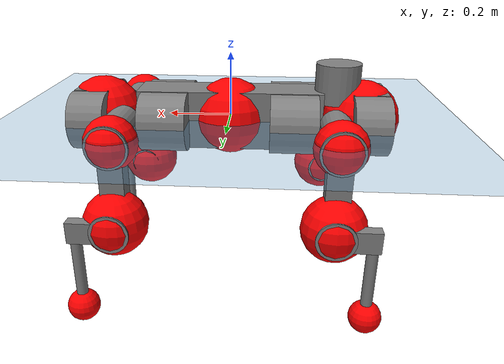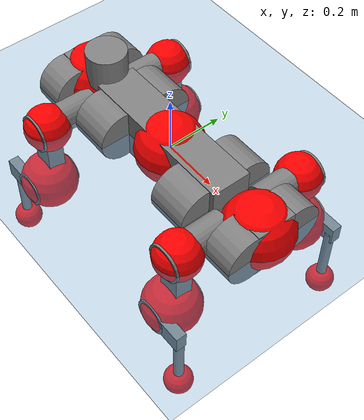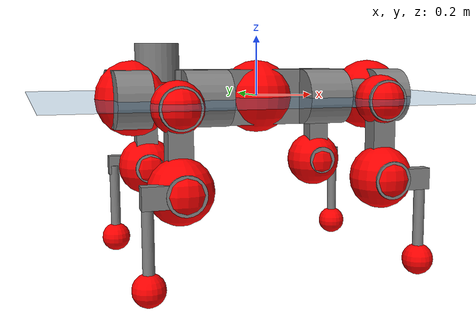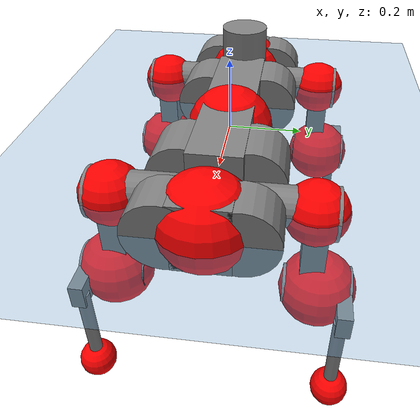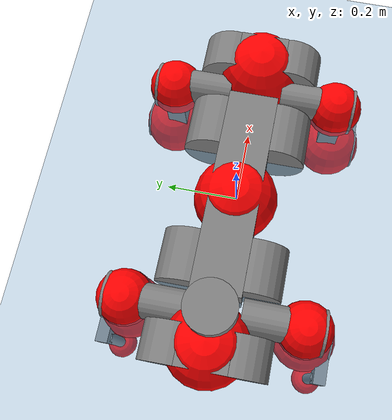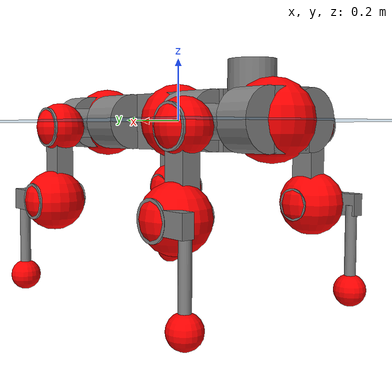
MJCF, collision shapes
<mujoco model="anymal_c">
  <compiler angle="radian" assetdir="assets" balanceinertia="true" inertiafromgeom="false"/>

  <option timestep="0.005" density="1.2" viscosity="2e-05"/>

  <size nkey="1"/>

  <visual>
    <quality shadowsize="8192"/>
    <map shadowclip="0.5"/>
  </visual>

  <default>
    <default class="/">
      <material specular="0" shininess="0.25"/>
      <geom contype="0" conaffinity="0" group="1" solref="-1000 -80"/>
      <site size="0.01 0.005 0.005" group="5"/>
      <general forcelimited="true" forcerange="-80 80" biastype="affine" gainprm="80" biasprm="0 -80 -2"/>
      <default class="anymal_c">
        <joint armature="0.01" damping="0.01" frictionloss="0.1"/>
        <default class="visual">
          <geom type="mesh" group="2"/>
          <default class="visual_zflip"/>
        </default>
        <default class="collision">
          <geom type="cylinder" group="3"/>
          <default class="foot">
            <geom size="0.03 0 0" type="sphere" condim="6" priority="1" friction="0.8 0.02 0.01" solimp="0.015 1 0.03"/>
          </default>
        </default>
      </default>
      <default class="reward_collision_sphere">
        <geom group="5" rgba="1 0 0 1"/>
      </default>
    </default>
  </default>

  <asset>
    <texture type="skybox" colorspace="auto" name="//unnamed_texture_0" builtin="gradient" rgb1="0.95 0.95 0.95" rgb2="0.95 0.95 0.95" width="100" height="600"/>
    <texture type="2d" colorspace="auto" name="texplane" builtin="checker" rgb1="0.345 0.575 0.748" rgb2="0.345 0.575 0.748" markrgb="1 1 1" width="512" height="512"/>
    <texture type="2d" colorspace="linear" name="base" file="base.png"/>
    <texture type="2d" colorspace="linear" name="top_shell" file="top_shell.png"/>
    <texture type="2d" colorspace="linear" name="bottom_shell" file="bottom_shell.png"/>
    <texture type="2d" colorspace="linear" name="remote" file="remote.png"/>
    <texture type="2d" colorspace="linear" name="hatch" file="hatch.png"/>
    <texture type="2d" colorspace="linear" name="handle" file="handle.png"/>
    <texture type="2d" colorspace="linear" name="face" file="face.png"/>
    <texture type="2d" colorspace="linear" name="battery" file="battery.png"/>
    <texture type="2d" colorspace="linear" name="lidar_cage" file="lidar_cage.png"/>
    <texture type="2d" colorspace="linear" name="depth_camera" file="depth_camera.png"/>
    <texture type="2d" colorspace="linear" name="wide_angle_camera" file="wide_angle_camera.png"/>
    <texture type="2d" colorspace="linear" name="lidar" file="lidar.png"/>
    <texture type="2d" colorspace="linear" name="drive" file="drive.png"/>
    <texture type="2d" colorspace="linear" name="hip_l" file="hip_l.png"/>
    <texture type="2d" colorspace="linear" name="shank_l" file="shank_l.png"/>
    <texture type="2d" colorspace="linear" name="foot" file="foot.png"/>
    <texture type="2d" colorspace="linear" name="thigh" file="thigh.png"/>
    <texture type="2d" colorspace="linear" name="shank_r" file="shank_r.png"/>
    <texture type="2d" colorspace="linear" name="hip_r" file="hip_r.png"/>
    <material name="MatPlane" class="/" texture="texplane" texuniform="true" texrepeat="2 2" specular="0.9" shininess="0.5"/>
    <material name="black_plastic" class="/" rgba="0.007 0.007 0.007 1"/>
    <material name="green" class="/" rgba="0.052 0.178 0.033 1"/>
    <material name="red" class="/" rgba="0.178 0.006 0.005 1"/>
    <material name="yellow" class="/" rgba="0.178 0.119 0.006 1"/>
    <material name="lwl" class="/" rgba="0.8 0.8 0.8 1"/>
    <material name="base" class="/" texture="base"/>
    <material name="top_shell" class="/" texture="top_shell"/>
    <material name="bottom_shell" class="/" texture="bottom_shell"/>
    <material name="hip_l" class="/" texture="hip_l"/>
    <material name="thigh" class="/" texture="thigh"/>
    <material name="shank_l" class="/" texture="shank_l"/>
    <material name="foot" class="/" texture="foot"/>
    <material name="hip_r" class="/" texture="hip_r"/>
    <material name="shank" class="/" texture="shank_r"/>
    <material name="hatch" class="/" texture="hatch"/>
    <material name="remote" class="/" texture="remote"/>
    <material name="handle" class="/" texture="handle"/>
    <material name="face" class="/" texture="face"/>
    <material name="depth_camera" class="/" texture="depth_camera"/>
    <material name="wide_angle_camera" class="/" texture="wide_angle_camera"/>
    <material name="battery" class="/" texture="battery"/>
    <material name="lidar_cage" class="/" texture="lidar_cage"/>
    <material name="lidar" class="/" texture="lidar"/>
    <material name="drive" class="/" texture="drive"/>
    <mesh name="base_0" class="/" file="base_0.obj"/>
    <mesh name="base_1" class="/" file="base_1.obj"/>
    <mesh name="base_2" class="/" file="base_2.obj"/>
    <mesh name="base_3" class="/" file="base_3.obj"/>
    <mesh name="base_4" class="/" file="base_4.obj"/>
    <mesh name="base_5" class="/" file="base_5.obj"/>
    <mesh name="top_shell" class="/" file="top_shell.obj"/>
    <mesh name="bottom_shell" class="/" file="bottom_shell.obj"/>
    <mesh name="remote" class="/" file="remote.obj"/>
    <mesh name="handle" class="/" file="handle.obj"/>
    <mesh name="face" class="/" file="face.obj"/>
    <mesh name="wide_angle_camera" class="/" file="wide_angle_camera.obj"/>
    <mesh name="depth_camera" class="/" file="depth_camera.obj"/>
    <mesh name="battery" class="/" file="battery.obj"/>
    <mesh name="lidar_cage" class="/" file="lidar_cage.obj"/>
    <mesh name="lidar" class="/" file="lidar.obj"/>
    <mesh name="drive" class="/" file="drive.obj"/>
    <mesh name="hip_l" class="/" file="hip_l.obj"/>
    <mesh name="thigh" class="/" file="thigh.obj"/>
    <mesh name="shank_l" class="/" file="shank_l.obj"/>
    <mesh name="foot" class="/" file="foot.obj"/>
    <mesh name="hip_r" class="/" file="hip_r.obj"/>
    <mesh name="hatch" class="/" file="hatch.obj"/>
    <mesh name="shank_r" class="/" file="shank_r.obj"/>
  </asset>

  <worldbody>
    <geom name="floor" class="/" size="100 100 0.125" type="plane" group="0" material="MatPlane"/>
    <light name="toplight_shadow" class="/" pos="0 0 5" dir="0.0990148 0.0990148 -0.990148" type="directional" ambient="0.04 0.04 0.04" diffuse="0.55 0.55 0.55" specular="0.12 0.12 0.12"/>
    <light name="toplight_fill" class="/" pos="0 0 5" dir="0.0990148 0.0990148 -0.990148" type="directional" castshadow="false" ambient="0.04 0.04 0.04" diffuse="0.3 0.3 0.3" specular="0.08 0.08 0.08"/>
    <body name="trunk" childclass="anymal_c" pos="-0.000249865 0.00163856 -0.0017059" quat="1 -0.00084172 6.67401e-05 5.26216e-05">
      <inertial pos="0.00271569 0.00619537 0.0387469" quat="0.501394 0.497846 0.500446 0.500307" mass="20.611" diaginertia="0.513601 1.97154 0.101556"/>
      <joint name="//unnamed_joint_0" type="free" armature="0" damping="0" frictionloss="0"/>
      <geom name="//unnamed_geom_1" class="visual" material="green" mesh="base_0"/>
      <geom name="//unnamed_geom_2" class="visual" material="yellow" mesh="base_1"/>
      <geom name="//unnamed_geom_3" class="visual" material="red" mesh="base_2"/>
      <geom name="//unnamed_geom_4" class="visual" material="black_plastic" mesh="base_3"/>
      <geom name="//unnamed_geom_5" class="visual" material="lwl" mesh="base_4"/>
      <geom name="//unnamed_geom_6" class="visual" material="base" mesh="base_5"/>
      <geom name="trunk_1" class="collision" size="0.293138 0.0707574 0.0909739" type="box"/>
      <geom name="trunk_2" class="collision" size="0.0909739 0.0732845" pos="0.20209 0.0874707 0" quat="0.707107 0 0.707107 0"/>
      <geom name="trunk_3" class="collision" size="0.0909739 0.0732845" pos="-0.20209 0.0874707 0" quat="0.707107 0 0.707107 0"/>
      <geom name="trunk_4" class="collision" size="0.0909739 0.0732845" pos="0.20209 -0.0874707 0" quat="0.707107 0 0.707107 0"/>
      <geom name="trunk_5" class="collision" size="0.0909739 0.0732845" pos="-0.20209 -0.0874707 0" quat="0.707107 0 0.707107 0"/>
      <geom name="//unnamed_geom_12" class="visual" material="top_shell" mesh="top_shell"/>
      <geom name="//unnamed_geom_13" class="visual" material="bottom_shell" mesh="bottom_shell"/>
      <geom name="//unnamed_geom_14" class="visual" material="remote" mesh="remote"/>
      <geom name="//unnamed_geom_15" class="visual" material="handle" mesh="handle"/>
      <geom name="//unnamed_geom_16" class="visual" pos="0.385133 0 0" quat="1 0 0 0" material="face" mesh="face"/>
      <geom name="trunk_6" class="collision" size="0.0555951 0.0707574 0.0909739" pos="0.436236 0 0" type="box"/>
      <geom name="//unnamed_geom_18" class="collision" size="0.0909739 0.0555951" pos="0.436236 0.0874707 0" quat="0.707107 0 0.707107 0"/>
      <geom name="//unnamed_geom_19" class="collision" size="0.0909739 0.0555951" pos="0.436236 -0.0874707 0" quat="0.707107 0 0.707107 0"/>
      <geom name="//unnamed_geom_20" class="visual" pos="0.428939 0 -0.0243557" quat="0.965926 0 0.258819 0" material="depth_camera" mesh="depth_camera"/>
      <geom name="//unnamed_geom_21" class="visual" pos="0.476654 0 0.0127803" material="wide_angle_camera" mesh="wide_angle_camera"/>
      <geom name="//unnamed_geom_22" class="visual_zflip" pos="-0.385133 0 0" quat="0 0 0 1" material="face" mesh="face"/>
      <geom name="trunk_7" class="collision" size="0.0555951 0.0707574 0.0909739" pos="-0.436236 0 0" quat="0 0 0 1" type="box"/>
      <geom name="//unnamed_geom_24" class="collision" size="0.0909739 0.0555951" pos="-0.436236 -0.0874707 0" quat="0 -0.707107 0 0.707107"/>
      <geom name="//unnamed_geom_25" class="collision" size="0.0909739 0.0555951" pos="-0.436236 0.0874707 0" quat="0 -0.707107 0 0.707107"/>
      <geom name="//unnamed_geom_26" class="visual" pos="-0.428939 0 -0.0243557" quat="0 -0.258819 0 0.965926" material="depth_camera" mesh="depth_camera"/>
      <geom name="//unnamed_geom_27" class="visual_zflip" pos="-0.476654 0 0.0127803" quat="0 0 0 1" material="wide_angle_camera" mesh="wide_angle_camera"/>
      <geom name="//unnamed_geom_28" class="visual" material="battery" mesh="battery"/>
      <geom name="//unnamed_geom_29" class="visual" pos="0 0.0997446 0.0253741" quat="0.683013 -0.183013 0.183013 0.683013" material="depth_camera" mesh="depth_camera"/>
      <geom name="//unnamed_geom_30" class="visual" pos="0 -0.0997446 0.0253741" quat="0.683013 0.183013 0.183013 -0.683013" material="depth_camera" mesh="depth_camera"/>
      <geom name="//unnamed_geom_31" class="visual" pos="-0.338211 0 0.0627492" quat="1 0 0 0" material="lidar_cage" mesh="lidar_cage"/>
      <geom name="trunk_8" class="collision" size="0.0707574 0.0606492" pos="-0.338211 0 0.113973"/>
      <geom name="//unnamed_geom_33" class="visual" pos="-0.338211 0.000125889 0.1214" quat="0.707107 0 0 -0.707107" material="lidar" mesh="lidar"/>
      <geom name="//unnamed_geom_34" class="visual" pos="0.278652 0.129816 6.82848e-09" quat="0.258819 0.965926 0 0" material="drive" mesh="drive"/>
      <geom name="//unnamed_geom_35" class="visual" pos="0.278652 -0.129816 -6.82848e-09" quat="0.258819 -0.965926 0 0" material="drive" mesh="drive"/>
      <geom name="//unnamed_geom_36" class="visual" pos="-0.278652 0.129816 -6.82848e-09" quat="0 0 0.965926 -0.258819" material="drive" mesh="drive"/>
      <geom name="//unnamed_geom_37" class="visual" pos="-0.278652 -0.129816 6.82848e-09" quat="0 0 -0.965926 -0.258819" material="drive" mesh="drive"/>
      <geom name="//unnamed_geom_38" class="visual" pos="0.107781 0 0.0623223" quat="1 0 0 0" material="hatch" mesh="hatch"/>
      <geom name="//unnamed_geom_39" class="reward_collision_sphere" size="0.121298"/>
      <geom name="//unnamed_geom_40" class="reward_collision_sphere" size="0.121298" pos="0.418117 0 0"/>
      <geom name="//unnamed_geom_41" class="reward_collision_sphere" size="0.121298" pos="-0.418117 0 0"/>
      <site name="imu" pos="0.220601 0.018238 0.0472327" size="0.0101082"/>
      <camera name="track" pos="0 -2.49916 0" quat="0.707107 0.707107 0 0" mode="trackcom"/>
      <camera name="ego_camera" pos="0.418117 0 -0.0341492" quat="-0.5 -0.5 0.5 0.5"/>
      <body name="LF_HIP" pos="0.281477 0.129051 -0.000884811" quat="0.258772 0.965938 0.000926245 -0.000305">
        <inertial pos="0.0529492 -0.0154894 -0.00730547" quat="-0.131462 0.698774 -0.17038 0.682205" mass="2.97958" diaginertia="0.00408301 0.0153326 0.00150882"/>
        <joint name="LF_HAA" pos="0 0 0" axis="0.999964 0.00586661 -0.0062112" range="-0.715819 0.437992" armature="0.00967848" damping="0.0173623" frictionloss="0.101863"/>
        <geom name="//unnamed_geom_42" class="visual" pos="0 0.000401689 -6.5977e-05" quat="0.258819 -0.965926 0 0" material="hip_l" mesh="hip_l"/>
        <geom name="//unnamed_geom_43" class="visual" pos="0.0556561 -0.0715175 -0.0383627" quat="0.183013 -0.683013 0.683013 0.183013" material="drive" mesh="drive"/>
        <geom name="//unnamed_geom_44" class="collision" size="0.050541 0.0707574" pos="0.0556561 -0.0149447 -0.00589501" quat="-0.353553 -0.612372 0.612372 -0.353553"/>
        <body name="LF_THIGH" pos="0.0522771 -0.0911156 -0.0331495" quat="0.182506 -0.6852 0.680744 0.183794">
          <inertial pos="0.02878 -0.00657729 -0.212127" quat="0.992849 -0.00388636 -0.0797013 0.0887902" mass="3.15374" diaginertia="0.0220416 0.0839268 0.00188561"/>
          <joint name="LF_HFE" pos="0 0 0" axis="0.999957 0.00325319 -0.00870514" stiffness="0.000231531" range="-3.10449 3.24455" armature="0.00701871" damping="0.0237605" frictionloss="0.103564"/>
          <geom name="//unnamed_geom_45" class="visual" pos="-0.00637534 -1.0046e-05 0" quat="0.707107 0 0 -0.707107" material="thigh" mesh="thigh"/>
          <geom name="//unnamed_geom_46" class="collision" size="0.0657033 0.0404328" pos="0.037166 0 0" quat="0.5 0.5 -0.5 -0.5"/>
          <geom name="//unnamed_geom_47" class="collision" size="0.0379058 0.0303246 0.142843" pos="0.0278745 0 -0.120644" quat="0.707107 0 0 -0.707107" type="box"/>
          <geom name="//unnamed_geom_48" class="visual" pos="0.0931937 0 -0.243313" quat="1 0 0 0" material="drive" mesh="drive"/>
          <geom name="//unnamed_geom_49" class="collision" size="0.050541 0.0707574" pos="0.0281532 0 -0.243313" quat="0.707107 0 0.707107 0"/>
          <geom name="//unnamed_geom_50" class="reward_collision_sphere" size="0.0808656" pos="0.0232287 0 0"/>
          <body name="LF_SHANK" pos="0.0949573 0.00097779 -0.248354" quat="0.999999 -0.00021674 -0.00113795 0.000322081">
            <inertial pos="0.00957775 -0.0753143 -0.065602" quat="0.993389 -0.110985 -0.00349535 -0.029124" mass="0.628271" diaginertia="0.00710983 0.0267217 0.000501802"/>
            <joint name="LF_KFE" pos="0 0 0" axis="0.999968 -0.00755447 -0.00246447" range="-3.27368 3.07759" armature="0.010344" damping="0.0263719" frictionloss="0.108986"/>
            <geom name="//unnamed_geom_51" class="visual" pos="-0.00207886 -0.0110846 0" quat="0.707107 0 0 -0.707107" material="shank_l" mesh="shank_l"/>
            <geom name="LF_kfe_act" class="collision" size="0.0606492 0.0202164" pos="0.018583 0 0" quat="0.5 0.5 -0.5 -0.5"/>
            <geom name="//unnamed_geom_53" class="collision" size="0.0581212 0.0341152 0.0192056" pos="0.018583 -0.0718497 0" quat="0.5 0.5 -0.5 -0.5" type="box"/>
            <geom name="//unnamed_geom_54" class="visual" pos="0.0121259 -0.113473 -0.288535" quat="0.382683 0 0 -0.92388" material="foot" mesh="foot"/>
            <geom name="LF_calf" class="collision" size="0.0176894 0.14278" pos="0.0121254 -0.109901 -0.144268" quat="0.707107 0 0 -0.707107"/>
            <geom name="LF_foot" class="foot" size="0.0326063" pos="0.0121254 -0.109901 -0.269326" quat="0.707107 0 0 -0.707107"/>
            <geom name="//unnamed_geom_57" class="reward_collision_sphere" size="0.101082" pos="-0.0464575 0 0"/>
            <geom name="//unnamed_geom_58" class="reward_collision_sphere" size="0.050541" pos="0.0121254 -0.109901 -0.269326"/>
            <site name="LF_foot" class="foot" pos="0.0121254 -0.109901 -0.269326" quat="0.707107 0 0 -0.707107" size="0.0101082"/>
          </body>
        </body>
      </body>
      <body name="RF_HIP" pos="0.285176 -0.129992 0.0100069" quat="0.259664 -0.965699 0.000633917 2.70675e-05">
        <inertial pos="0.0504954 0.0204477 -0.00762079" quat="0.150306 0.690907 0.1252 0.695974" mass="2.84414" diaginertia="0.00418316 0.014957 0.0015257"/>
        <joint name="RF_HAA" pos="0 0 0" axis="0.999998 0.000731841 0.00182333" stiffness="0.0340061" range="-0.455504 0.64006" armature="0.00981371" damping="0.0243985" frictionloss="0.110683"/>
        <geom name="//unnamed_geom_59" class="visual" pos="0 -0.000401685 -6.59768e-05" quat="0.258819 0.965926 0 0" material="hip_r" mesh="hip_r"/>
        <geom name="//unnamed_geom_60" class="visual" pos="0.0556561 0.0715175 -0.0383627" quat="0.183013 0.683013 0.683013 -0.183013" material="drive" mesh="drive"/>
        <geom name="//unnamed_geom_61" class="collision" size="0.050541 0.0707574" pos="0.0556561 0.0149447 -0.00589501" quat="-0.353553 0.612372 0.612372 0.353553"/>
        <body name="RF_THIGH" pos="0.0548659 0.0849171 -0.0309522" quat="0.182309 0.682677 0.683554 -0.182947">
          <inertial pos="0.0287037 0.00135991 -0.214916" quat="0.992221 -0.00378233 -0.0872397 0.0887287" mass="3.27332" diaginertia="0.0215692 0.0921736 0.00192026"/>
          <joint name="RF_HFE" pos="0 0 0" axis="0.999902 -0.0034955 0.0135713" range="-3.15767 3.16747" armature="0.0122435" damping="0" frictionloss="0.106741"/>
          <geom name="//unnamed_geom_62" class="visual" pos="-0.00637534 -1.0046e-05 0" quat="0.707107 0 0 -0.707107" material="thigh" mesh="thigh"/>
          <geom name="//unnamed_geom_63" class="collision" size="0.0657033 0.0404328" pos="0.037166 0 0" quat="0.5 0.5 0.5 0.5"/>
          <geom name="//unnamed_geom_64" class="collision" size="0.0379058 0.0303246 0.142843" pos="0.0278745 0 -0.120644" quat="0.707107 0 0 0.707107" type="box"/>
          <geom name="//unnamed_geom_65" class="visual" pos="0.0931937 0 -0.243313" quat="1 0 0 0" material="drive" mesh="drive"/>
          <geom name="//unnamed_geom_66" class="collision" size="0.050541 0.0707574" pos="0.0281532 0 -0.243313" quat="0.707107 0 0.707107 0"/>
          <geom name="//unnamed_geom_67" class="reward_collision_sphere" size="0.0808656" pos="0.0232287 0 0"/>
          <body name="RF_SHANK" pos="0.0896534 -0.00265119 -0.248291" quat="0.999999 0.000828976 -0.000690973 -0.000174904">
            <inertial pos="0.00624947 0.0750339 -0.0672933" quat="0.993399 0.112015 -0.000790483 0.0247056" mass="0.55756" diaginertia="0.00637907 0.0251864 0.000471886"/>
            <joint name="RF_KFE" pos="0 0 0" axis="0.999976 0.000918569 -0.00686205" range="-3.10635 3.17739" armature="0.00901619" damping="0.034815" frictionloss="0.0947294"/>
            <geom name="//unnamed_geom_68" class="visual" pos="-0.00207885 0.0110846 0" quat="0.707107 0 0 0.707107" material="shank" mesh="shank_r"/>
            <geom name="RF_kfe_act" class="collision" size="0.0606492 0.0202164" pos="0.018583 0 0" quat="0.5 0.5 0.5 0.5"/>
            <geom name="//unnamed_geom_70" class="collision" size="0.0581212 0.0341152 0.0192056" pos="0.018583 0.0718497 0" quat="0.5 0.5 0.5 0.5" type="box"/>
            <geom name="//unnamed_geom_71" class="visual" pos="0.0121249 0.113473 -0.288535" quat="0.382683 0 0 0.92388" material="foot" mesh="foot"/>
            <geom name="RF_calf" class="collision" size="0.0176894 0.14278" pos="0.0121254 0.109901 -0.144268" quat="0.707107 0 0 0.707107"/>
            <geom name="RF_foot" class="foot" size="0.0377699" pos="0.0121254 0.109901 -0.269326" quat="0.707107 0 0 0.707107"/>
            <geom name="//unnamed_geom_74" class="reward_collision_sphere" size="0.101082" pos="-0.0464575 0 0"/>
            <geom name="//unnamed_geom_75" class="reward_collision_sphere" size="0.050541" pos="0.0121254 0.109901 -0.269326"/>
            <site name="RF_foot" class="foot" pos="0.0121254 0.109901 -0.269326" quat="0.707107 0 0 0.707107" size="0.0101082"/>
          </body>
        </body>
      </body>
      <body name="LH_HIP" pos="-0.278288 0.130249 -0.00205584" quat="0.000674779 0.000541861 0.965683 -0.259721">
        <inertial pos="0.0550874 0.016564 -0.00815452" quat="0.130684 0.686001 0.131117 0.703656" mass="3.07571" diaginertia="0.00388744 0.0147742 0.00146176"/>
        <joint name="LH_HAA" pos="0 0 0" axis="0.999994 0.000514952 0.00350307" range="-0.567838 0.694066" armature="0.00899613" damping="0.00144577" frictionloss="0.0868347"/>
        <geom name="//unnamed_geom_76" class="visual" pos="0 -0.000401685 -6.59768e-05" quat="-0.258819 -0.965926 0 0" material="hip_r" mesh="hip_r"/>
        <geom name="//unnamed_geom_77" class="visual" pos="0.0556561 0.0715175 -0.0383627" quat="0.183013 0.683013 0.683013 -0.183013" material="drive" mesh="drive"/>
        <geom name="//unnamed_geom_78" class="collision" size="0.050541 0.0707574" pos="0.0556561 0.0149447 -0.00589501" quat="-0.353553 0.612372 0.612372 0.353553"/>
        <body name="LH_THIGH" pos="0.0550806 0.0902256 -0.0356701" quat="0.184306 0.681224 0.68422 -0.183869">
          <inertial pos="0.0298633 -0.00728648 -0.208203" quat="0.993958 -0.00342973 -0.0800075 0.0750621" mass="3.42701" diaginertia="0.0211342 0.0907524 0.00179862"/>
          <joint name="LH_HFE" pos="0 0 0" axis="0.999428 -0.0337503 -0.0022919" range="-3.19012 3.11295" armature="0.00937731" damping="0" frictionloss="0.103714"/>
          <geom name="//unnamed_geom_79" class="visual" pos="-0.00637534 -1.0046e-05 0" quat="0.707107 0 0 -0.707107" material="thigh" mesh="thigh"/>
          <geom name="//unnamed_geom_80" class="collision" size="0.0657033 0.0404328" pos="0.037166 0 0" quat="0.5 0.5 -0.5 -0.5"/>
          <geom name="//unnamed_geom_81" class="collision" size="0.0379058 0.0303246 0.142843" pos="0.0278745 0 -0.120644" quat="0.707107 0 0 -0.707107" type="box"/>
          <geom name="//unnamed_geom_82" class="visual" pos="0.0931937 0 -0.243313" quat="1 0 0 0" material="drive" mesh="drive"/>
          <geom name="//unnamed_geom_83" class="collision" size="0.050541 0.0707574" pos="0.0281532 0 -0.243313" quat="0.707107 0 0.707107 0"/>
          <geom name="//unnamed_geom_84" class="reward_collision_sphere" size="0.0808656" pos="0.0232287 0 0"/>
          <body name="LH_SHANK" pos="0.0928936 -0.00391405 -0.245058" quat="1 1.81576e-05 -0.000129096 3.25916e-05">
            <inertial pos="0.00482569 0.0729291 -0.0709847" quat="0.992526 0.120502 -0.00390901 0.0188813" mass="0.611887" diaginertia="0.00744211 0.029838 0.000541695"/>
            <joint name="LH_KFE" pos="0 0 0" axis="0.999998 -0.000747265 -0.00202073" range="-3.26531 3.12685" armature="0.00674232" damping="0" frictionloss="0.107907"/>
            <geom name="//unnamed_geom_85" class="visual" pos="-0.00207885 0.0110846 0" quat="-0.707107 0 0 -0.707107" material="shank" mesh="shank_r"/>
            <geom name="LH_kfe_act" class="collision" size="0.0606492 0.0202164" pos="0.018583 0 0" quat="0.5 0.5 -0.5 -0.5"/>
            <geom name="//unnamed_geom_87" class="collision" size="0.0581212 0.0341152 0.0192056" pos="0.018583 0.0718497 0" quat="0.5 0.5 -0.5 -0.5" type="box"/>
            <geom name="//unnamed_geom_88" class="visual" pos="0.0121249 0.113473 -0.288535" quat="-0.382683 0 0 -0.92388" material="foot" mesh="foot"/>
            <geom name="LH_calf" class="collision" size="0.0176894 0.14278" pos="0.0121254 0.109901 -0.144268" quat="0.707107 0 0 -0.707107"/>
            <geom name="LH_foot" class="foot" size="0.0349286" pos="0.0121254 0.109901 -0.269326" quat="0.707107 0 0 -0.707107"/>
            <geom name="//unnamed_geom_91" class="reward_collision_sphere" size="0.101082" pos="-0.0464575 0 0"/>
            <geom name="//unnamed_geom_92" class="reward_collision_sphere" size="0.050541" pos="0.0121254 0.109901 -0.269326"/>
            <site name="LH_foot" class="foot" pos="0.0121254 0.109901 -0.269326" quat="0.707107 0 0 -0.707107" size="0.0101082"/>
          </body>
        </body>
      </body>
      <body name="RH_HIP" pos="-0.272371 -0.13215 7.04524e-05" quat="-0.00200106 -0.00255743 -0.965544 -0.260221">
        <inertial pos="0.054156 -0.0208942 -0.00984636" quat="-0.128129 0.709763 -0.13564 0.67928" mass="2.88614" diaginertia="0.00406827 0.0152969 0.00135558"/>
        <joint name="RH_HAA" pos="0 0 0" axis="0.999929 0.00371873 -0.0113204" range="-0.770476 0.454888" armature="0.00753087" damping="0.00974553" frictionloss="0.0958278"/>
        <geom name="//unnamed_geom_93" class="visual" pos="0 0.000401689 -6.5977e-05" quat="-0.258819 0.965926 0 0" material="hip_l" mesh="hip_l"/>
        <geom name="//unnamed_geom_94" class="visual" pos="0.0556561 -0.0715175 -0.0383627" quat="-0.183013 0.683013 -0.683013 -0.183013" material="drive" mesh="drive"/>
        <geom name="//unnamed_geom_95" class="collision" size="0.050541 0.0707574" pos="0.0556561 -0.0149447 -0.00589501" quat="0.353553 0.612372 -0.612372 0.353553"/>
        <body name="RH_THIGH" pos="0.057452 -0.093926 -0.03693" quat="-0.183233 0.682949 -0.682898 -0.183458">
          <inertial pos="0.0285085 0.00262987 -0.211281" quat="0.993449 -0.0161459 -0.0800372 0.0799537" mass="3.33105" diaginertia="0.0209391 0.0914423 0.00198658"/>
          <joint name="RH_HFE" pos="0 0 0" axis="0.999999 -0.000494417 -0.00105219" range="-3.10601 3.00407" armature="0.0132569" damping="0" frictionloss="0.0920807"/>
          <geom name="//unnamed_geom_96" class="visual" pos="-0.00637534 -1.0046e-05 0" quat="0.707107 0 0 -0.707107" material="thigh" mesh="thigh"/>
          <geom name="//unnamed_geom_97" class="collision" size="0.0657033 0.0404328" pos="0.037166 0 0" quat="0.5 0.5 0.5 0.5"/>
          <geom name="//unnamed_geom_98" class="collision" size="0.0379058 0.0303246 0.142843" pos="0.0278745 0 -0.120644" quat="0.707107 0 0 0.707107" type="box"/>
          <geom name="//unnamed_geom_99" class="visual" pos="0.0931937 0 -0.243313" quat="1 0 0 0" material="drive" mesh="drive"/>
          <geom name="//unnamed_geom_100" class="collision" size="0.050541 0.0707574" pos="0.0281532 0 -0.243313" quat="0.707107 0 0.707107 0"/>
          <geom name="//unnamed_geom_101" class="reward_collision_sphere" size="0.0808656" pos="0.0232287 0 0"/>
          <body name="RH_SHANK" pos="0.0926883 -0.000370006 -0.243184" quat="1 -0.000642951 0.000180118 0.00036597">
            <inertial pos="0.00572814 -0.073706 -0.0682667" quat="0.992956 -0.116282 -0.000224438 -0.0227283" mass="0.590437" diaginertia="0.00714357 0.0279699 0.00049036"/>
            <joint name="RH_KFE" pos="0 0 0" axis="0.999911 -0.010265 0.00850881" stiffness="0.00768252" range="-3.22841 3.14122" armature="0.00929518" damping="0" frictionloss="0.0989736"/>
            <geom name="//unnamed_geom_102" class="visual" pos="-0.00207886 -0.0110846 0" quat="0.707107 0 0 -0.707107" material="shank_l" mesh="shank_l"/>
            <geom name="RH_kfe_act" class="collision" size="0.0606492 0.0202164" pos="0.018583 0 0" quat="0.5 0.5 0.5 0.5"/>
            <geom name="//unnamed_geom_104" class="collision" size="0.0581212 0.0341152 0.0192056" pos="0.018583 -0.0718497 0" quat="0.5 0.5 0.5 0.5" type="box"/>
            <geom name="//unnamed_geom_105" class="visual" pos="0.0121259 -0.113473 -0.288535" quat="0.382683 0 0 -0.92388" material="foot" mesh="foot"/>
            <geom name="RH_calf" class="collision" size="0.0176894 0.14278" pos="0.0121254 -0.109901 -0.144268" quat="0.707107 0 0 0.707107"/>
            <geom name="RH_foot" class="foot" size="0.0222471" pos="0.0121254 -0.109901 -0.269326" quat="0.707107 0 0 0.707107"/>
            <geom name="//unnamed_geom_108" class="reward_collision_sphere" size="0.101082" pos="-0.0464575 0 0"/>
            <geom name="//unnamed_geom_109" class="reward_collision_sphere" size="0.050541" pos="0.0121254 -0.109901 -0.269326"/>
            <site name="RH_foot" class="foot" pos="0.0121254 -0.109901 -0.269326" quat="0.707107 0 0 0.707107" size="0.0101082"/>
          </body>
        </body>
      </body>
    </body>
  </worldbody>

  <contact>
    <pair class="/" geom1="floor" geom2="LF_foot" name="//unnamed_contact_0"/>
    <pair class="/" geom1="floor" geom2="RF_foot" name="//unnamed_contact_1"/>
    <pair class="/" geom1="floor" geom2="LH_foot" name="//unnamed_contact_2"/>
    <pair class="/" geom1="floor" geom2="RH_foot" name="//unnamed_contact_3"/>
  </contact>

  <actuator>
    <general name="LF_HAA" class="/" joint="LF_HAA" forcerange="-82.2559 82.2559" gainprm="81.191" biasprm="0 -81.191 -2.2908"/>
    <general name="LF_HFE" class="/" joint="LF_HFE" forcerange="-79.9516 79.9516" gainprm="81.191" biasprm="0 -81.191 -2.2908"/>
    <general name="LF_KFE" class="/" joint="LF_KFE" forcerange="-87.3077 87.3077" gainprm="81.191" biasprm="0 -81.191 -2.2908"/>
    <general name="RF_HAA" class="/" joint="RF_HAA" forcerange="-80.9289 80.9289" gainprm="81.191" biasprm="0 -81.191 -2.2908"/>
    <general name="RF_HFE" class="/" joint="RF_HFE" forcerange="-84.4966 84.4966" gainprm="81.191" biasprm="0 -81.191 -2.2908"/>
    <general name="RF_KFE" class="/" joint="RF_KFE" forcerange="-88.2219 88.2219" gainprm="81.191" biasprm="0 -81.191 -2.2908"/>
    <general name="LH_HAA" class="/" joint="LH_HAA" forcerange="-76.6155 76.6155" gainprm="81.191" biasprm="0 -81.191 -2.2908"/>
    <general name="LH_HFE" class="/" joint="LH_HFE" forcerange="-82.6588 82.6588" gainprm="81.191" biasprm="0 -81.191 -2.2908"/>
    <general name="LH_KFE" class="/" joint="LH_KFE" forcerange="-87.6423 87.6423" gainprm="81.191" biasprm="0 -81.191 -2.2908"/>
    <general name="RH_HAA" class="/" joint="RH_HAA" forcerange="-80.3573 80.3573" gainprm="81.191" biasprm="0 -81.191 -2.2908"/>
    <general name="RH_HFE" class="/" joint="RH_HFE" forcerange="-84.9567 84.9567" gainprm="81.191" biasprm="0 -81.191 -2.2908"/>
    <general name="RH_KFE" class="/" joint="RH_KFE" forcerange="-66.6876 66.6876" gainprm="81.191" biasprm="0 -81.191 -2.2908"/>
  </actuator>

  <sensor>
    <gyro site="imu" name="imu_angular_velocity"/>
    <velocimeter site="imu" name="imu_linear_velocity"/>
    <framelinvel objtype="site" objname="LF_foot" name="LF_foot_global_linear_velocity"/>
    <framelinvel objtype="site" objname="RF_foot" name="RF_foot_global_linear_velocity"/>
    <framelinvel objtype="site" objname="LH_foot" name="LH_foot_global_linear_velocity"/>
    <framelinvel objtype="site" objname="RH_foot" name="RH_foot_global_linear_velocity"/>
  </sensor>

  <keyframe>
    <key name="home" qpos="0 0 0.55 1 0 0 0 0 0.4 -0.8 0 -0.4 0.8 0 -0.4 0.8 0 0.4 -0.8"/>
  </keyframe>
</mujoco>
